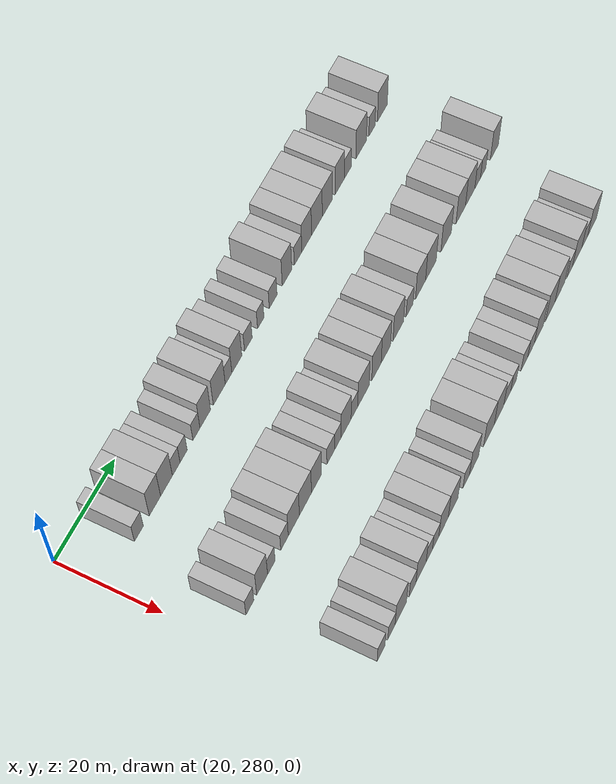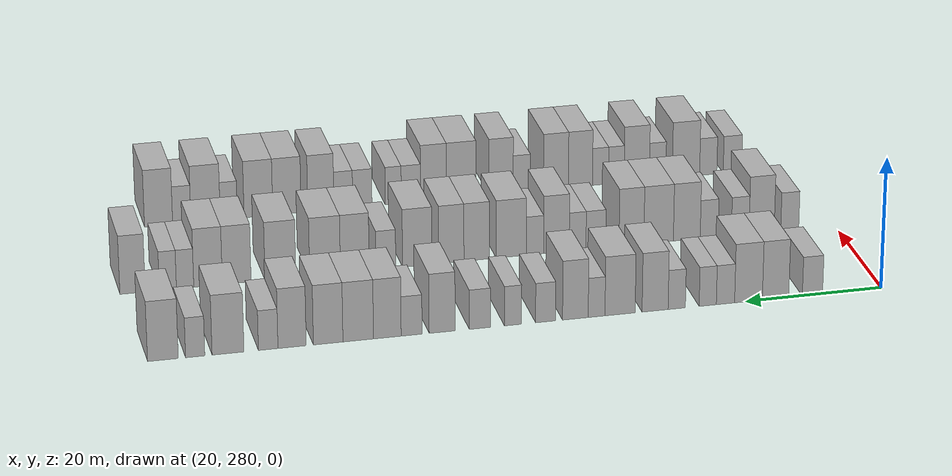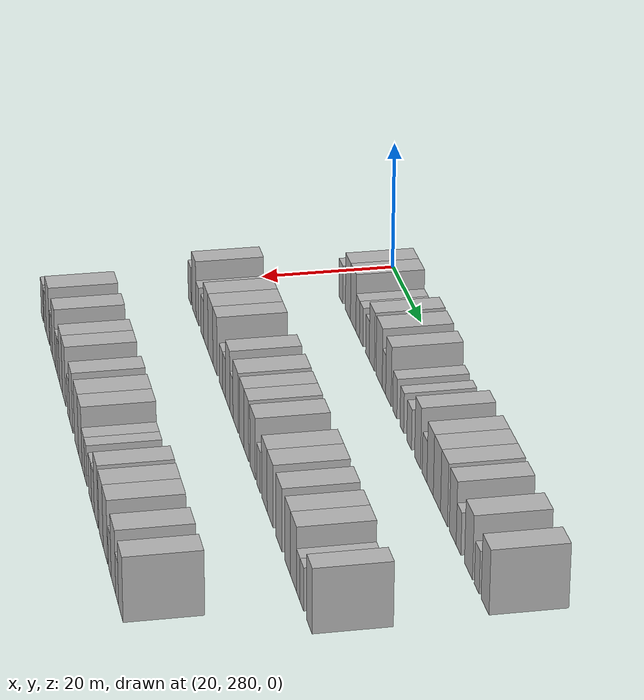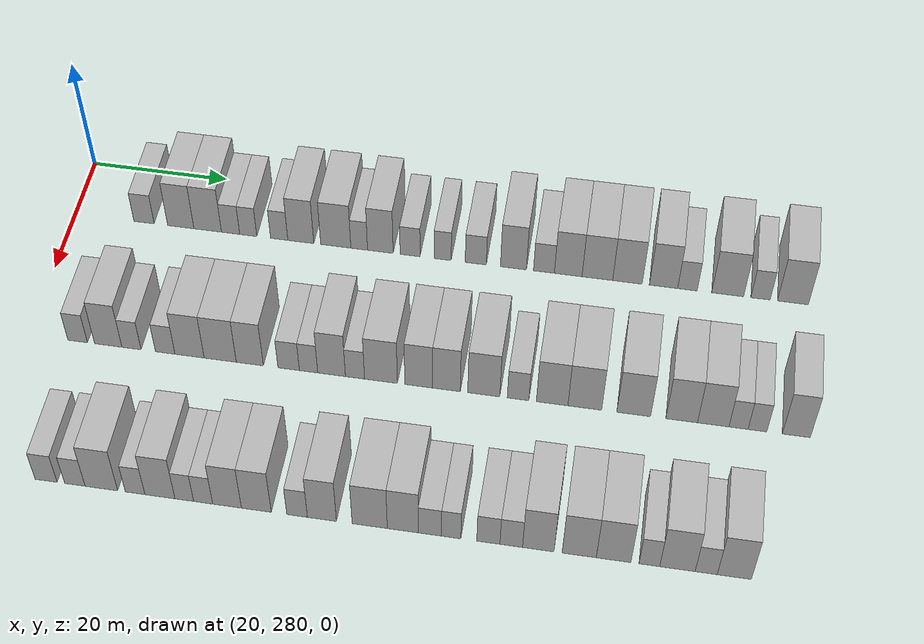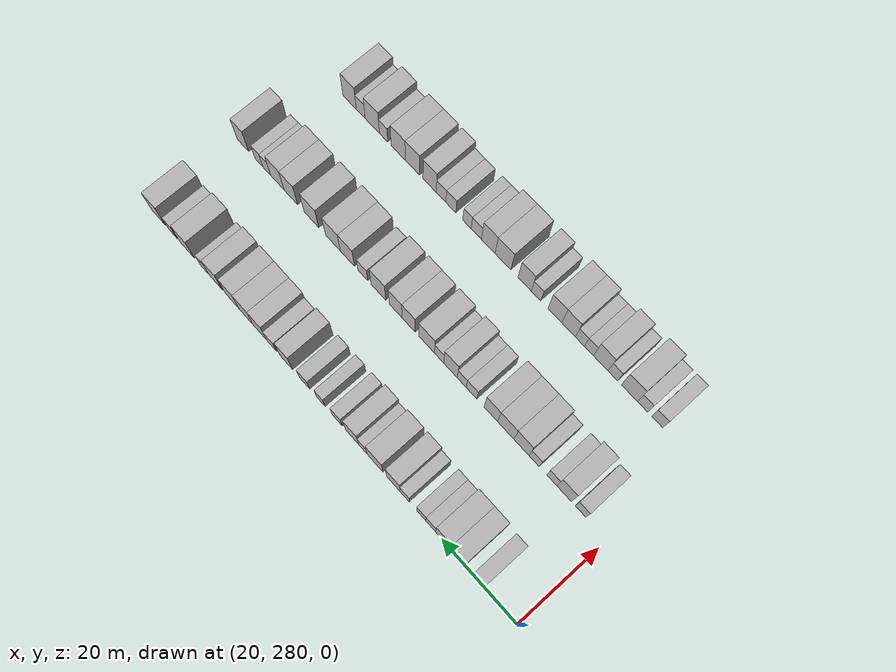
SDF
<sdf version="1.6">
 <world name="default">
  <model name="building_162">
   <static>1</static>
   <pose>25.0000 290.1784 0 0.000000 0.000000 0.000000</pose>
   <link name="link">
    <pose>0 0 3.00 0 0 0</pose>
    <collision name="collision"><geometry><box><size>10.0000 2.9744 6.0000</size></box></geometry></collision>
    <visual name="visual">
     <cast_shadows>0</cast_shadows>
     <geometry><box><size>10.0000 2.9744 6.0000</size></box></geometry>
     <material>
      <script>
       <uri>model://HANNAS_wall/materials/scripts</uri>
       <uri>model://HANNAS_wall/materials/textures</uri>
       <name>vrc/HANNAS_wall</name>
      </script>
     </material>
    </visual>
   </link>
  </model>
  <model name="building_163">
   <static>1</static>
   <pose>25.0000 295.5958 0 0.000000 0.000000 0.000000</pose>
   <link name="link">
    <pose>0 0 4.50 0 0 0</pose>
    <collision name="collision"><geometry><box><size>10.0000 3.8605 9.0000</size></box></geometry></collision>
    <visual name="visual">
     <cast_shadows>0</cast_shadows>
     <geometry><box><size>10.0000 3.8605 9.0000</size></box></geometry>
     <material>
      <script>
       <uri>model://HANNAS_wall/materials/scripts</uri>
       <uri>model://HANNAS_wall/materials/textures</uri>
       <name>vrc/HANNAS_wall</name>
      </script>
     </material>
    </visual>
   </link>
  </model>
  <model name="building_164">
   <static>1</static>
   <pose>25.0000 299.5522 0 0.000000 0.000000 0.000000</pose>
   <link name="link">
    <pose>0 0 4.50 0 0 0</pose>
    <collision name="collision"><geometry><box><size>10.0000 4.0522 9.0000</size></box></geometry></collision>
    <visual name="visual">
     <cast_shadows>0</cast_shadows>
     <geometry><box><size>10.0000 4.0522 9.0000</size></box></geometry>
     <material>
      <script>
       <uri>model://HANNAS_wall/materials/scripts</uri>
       <uri>model://HANNAS_wall/materials/textures</uri>
       <name>vrc/HANNAS_wall</name>
      </script>
     </material>
    </visual>
   </link>
  </model>
  <model name="building_165">
   <static>1</static>
   <pose>25.0000 302.9095 0 0.000000 0.000000 0.000000</pose>
   <link name="link">
    <pose>0 0 3.00 0 0 0</pose>
    <collision name="collision"><geometry><box><size>10.0000 2.6624 6.0000</size></box></geometry></collision>
    <visual name="visual">
     <cast_shadows>0</cast_shadows>
     <geometry><box><size>10.0000 2.6624 6.0000</size></box></geometry>
     <material>
      <script>
       <uri>model://HANNAS_wall/materials/scripts</uri>
       <uri>model://HANNAS_wall/materials/textures</uri>
       <name>vrc/HANNAS_wall</name>
      </script>
     </material>
    </visual>
   </link>
  </model>
  <model name="building_166">
   <static>1</static>
   <pose>25.0000 305.4868 0 0.000000 0.000000 0.000000</pose>
   <link name="link">
    <pose>0 0 3.00 0 0 0</pose>
    <collision name="collision"><geometry><box><size>10.0000 2.4922 6.0000</size></box></geometry></collision>
    <visual name="visual">
     <cast_shadows>0</cast_shadows>
     <geometry><box><size>10.0000 2.4922 6.0000</size></box></geometry>
     <material>
      <script>
       <uri>model://HANNAS_wall/materials/scripts</uri>
       <uri>model://HANNAS_wall/materials/textures</uri>
       <name>vrc/HANNAS_wall</name>
      </script>
     </material>
    </visual>
   </link>
  </model>
  <model name="building_167">
   <static>1</static>
   <pose>25.0000 309.9850 0 0.000000 0.000000 0.000000</pose>
   <link name="link">
    <pose>0 0 3.00 0 0 0</pose>
    <collision name="collision"><geometry><box><size>10.0000 2.5041 6.0000</size></box></geometry></collision>
    <visual name="visual">
     <cast_shadows>0</cast_shadows>
     <geometry><box><size>10.0000 2.5041 6.0000</size></box></geometry>
     <material>
      <script>
       <uri>model://HANNAS_wall/materials/scripts</uri>
       <uri>model://HANNAS_wall/materials/textures</uri>
       <name>vrc/HANNAS_wall</name>
      </script>
     </material>
    </visual>
   </link>
  </model>
  <model name="building_168">
   <static>1</static>
   <pose>25.0000 313.1184 0 0.000000 0.000000 0.000000</pose>
   <link name="link">
    <pose>0 0 4.50 0 0 0</pose>
    <collision name="collision"><geometry><box><size>10.0000 3.7628 9.0000</size></box></geometry></collision>
    <visual name="visual">
     <cast_shadows>0</cast_shadows>
     <geometry><box><size>10.0000 3.7628 9.0000</size></box></geometry>
     <material>
      <script>
       <uri>model://HANNAS_wall/materials/scripts</uri>
       <uri>model://HANNAS_wall/materials/textures</uri>
       <name>vrc/HANNAS_wall</name>
      </script>
     </material>
    </visual>
   </link>
  </model>
  <model name="building_169">
   <static>1</static>
   <pose>25.0000 318.1727 0 0.000000 0.000000 0.000000</pose>
   <link name="link">
    <pose>0 0 4.50 0 0 0</pose>
    <collision name="collision"><geometry><box><size>10.0000 4.3457 9.0000</size></box></geometry></collision>
    <visual name="visual">
     <cast_shadows>0</cast_shadows>
     <geometry><box><size>10.0000 4.3457 9.0000</size></box></geometry>
     <material>
      <script>
       <uri>model://HANNAS_wall/materials/scripts</uri>
       <uri>model://HANNAS_wall/materials/textures</uri>
       <name>vrc/HANNAS_wall</name>
      </script>
     </material>
    </visual>
   </link>
  </model>
  <model name="building_170">
   <static>1</static>
   <pose>25.0000 321.5497 0 0.000000 0.000000 0.000000</pose>
   <link name="link">
    <pose>0 0 3.00 0 0 0</pose>
    <collision name="collision"><geometry><box><size>10.0000 2.4084 6.0000</size></box></geometry></collision>
    <visual name="visual">
     <cast_shadows>0</cast_shadows>
     <geometry><box><size>10.0000 2.4084 6.0000</size></box></geometry>
     <material>
      <script>
       <uri>model://HANNAS_wall/materials/scripts</uri>
       <uri>model://HANNAS_wall/materials/textures</uri>
       <name>vrc/HANNAS_wall</name>
      </script>
     </material>
    </visual>
   </link>
  </model>
  <model name="building_171">
   <static>1</static>
   <pose>25.0000 324.5931 0 0.000000 0.000000 0.000000</pose>
   <link name="link">
    <pose>0 0 4.50 0 0 0</pose>
    <collision name="collision"><geometry><box><size>10.0000 3.6786 9.0000</size></box></geometry></collision>
    <visual name="visual">
     <cast_shadows>0</cast_shadows>
     <geometry><box><size>10.0000 3.6786 9.0000</size></box></geometry>
     <material>
      <script>
       <uri>model://HANNAS_wall/materials/scripts</uri>
       <uri>model://HANNAS_wall/materials/textures</uri>
       <name>vrc/HANNAS_wall</name>
      </script>
     </material>
    </visual>
   </link>
  </model>
  <model name="building_172">
   <static>1</static>
   <pose>25.0000 328.8581 0 0.000000 0.000000 0.000000</pose>
   <link name="link">
    <pose>0 0 3.00 0 0 0</pose>
    <collision name="collision"><geometry><box><size>10.0000 2.8513 6.0000</size></box></geometry></collision>
    <visual name="visual">
     <cast_shadows>0</cast_shadows>
     <geometry><box><size>10.0000 2.8513 6.0000</size></box></geometry>
     <material>
      <script>
       <uri>model://HANNAS_wall/materials/scripts</uri>
       <uri>model://HANNAS_wall/materials/textures</uri>
       <name>vrc/HANNAS_wall</name>
      </script>
     </material>
    </visual>
   </link>
  </model>
  <model name="building_173">
   <static>1</static>
   <pose>25.0000 333.5034 0 0.000000 0.000000 0.000000</pose>
   <link name="link">
    <pose>0 0 3.00 0 0 0</pose>
    <collision name="collision"><geometry><box><size>10.0000 2.4392 6.0000</size></box></geometry></collision>
    <visual name="visual">
     <cast_shadows>0</cast_shadows>
     <geometry><box><size>10.0000 2.4392 6.0000</size></box></geometry>
     <material>
      <script>
       <uri>model://HANNAS_wall/materials/scripts</uri>
       <uri>model://HANNAS_wall/materials/textures</uri>
       <name>vrc/HANNAS_wall</name>
      </script>
     </material>
    </visual>
   </link>
  </model>
  <model name="building_174">
   <static>1</static>
   <pose>25.0000 338.2202 0 0.000000 0.000000 0.000000</pose>
   <link name="link">
    <pose>0 0 3.00 0 0 0</pose>
    <collision name="collision"><geometry><box><size>10.0000 2.9945 6.0000</size></box></geometry></collision>
    <visual name="visual">
     <cast_shadows>0</cast_shadows>
     <geometry><box><size>10.0000 2.9945 6.0000</size></box></geometry>
     <material>
      <script>
       <uri>model://HANNAS_wall/materials/scripts</uri>
       <uri>model://HANNAS_wall/materials/textures</uri>
       <name>vrc/HANNAS_wall</name>
      </script>
     </material>
    </visual>
   </link>
  </model>
  <model name="building_175">
   <static>1</static>
   <pose>25.0000 343.5546 0 0.000000 0.000000 0.000000</pose>
   <link name="link">
    <pose>0 0 4.50 0 0 0</pose>
    <collision name="collision"><geometry><box><size>10.0000 3.6743 9.0000</size></box></geometry></collision>
    <visual name="visual">
     <cast_shadows>0</cast_shadows>
     <geometry><box><size>10.0000 3.6743 9.0000</size></box></geometry>
     <material>
      <script>
       <uri>model://HANNAS_wall/materials/scripts</uri>
       <uri>model://HANNAS_wall/materials/textures</uri>
       <name>vrc/HANNAS_wall</name>
      </script>
     </material>
    </visual>
   </link>
  </model>
  <model name="building_176">
   <static>1</static>
   <pose>25.0000 347.8638 0 0.000000 0.000000 0.000000</pose>
   <link name="link">
    <pose>0 0 3.00 0 0 0</pose>
    <collision name="collision"><geometry><box><size>10.0000 2.9440 6.0000</size></box></geometry></collision>
    <visual name="visual">
     <cast_shadows>0</cast_shadows>
     <geometry><box><size>10.0000 2.9440 6.0000</size></box></geometry>
     <material>
      <script>
       <uri>model://HANNAS_wall/materials/scripts</uri>
       <uri>model://HANNAS_wall/materials/textures</uri>
       <name>vrc/HANNAS_wall</name>
      </script>
     </material>
    </visual>
   </link>
  </model>
  <model name="building_177">
   <static>1</static>
   <pose>25.0000 351.2770 0 0.000000 0.000000 0.000000</pose>
   <link name="link">
    <pose>0 0 4.50 0 0 0</pose>
    <collision name="collision"><geometry><box><size>10.0000 3.8825 9.0000</size></box></geometry></collision>
    <visual name="visual">
     <cast_shadows>0</cast_shadows>
     <geometry><box><size>10.0000 3.8825 9.0000</size></box></geometry>
     <material>
      <script>
       <uri>model://HANNAS_wall/materials/scripts</uri>
       <uri>model://HANNAS_wall/materials/textures</uri>
       <name>vrc/HANNAS_wall</name>
      </script>
     </material>
    </visual>
   </link>
  </model>
  <model name="building_178">
   <static>1</static>
   <pose>25.0000 355.3597 0 0.000000 0.000000 0.000000</pose>
   <link name="link">
    <pose>0 0 4.50 0 0 0</pose>
    <collision name="collision"><geometry><box><size>10.0000 4.2828 9.0000</size></box></geometry></collision>
    <visual name="visual">
     <cast_shadows>0</cast_shadows>
     <geometry><box><size>10.0000 4.2828 9.0000</size></box></geometry>
     <material>
      <script>
       <uri>model://HANNAS_wall/materials/scripts</uri>
       <uri>model://HANNAS_wall/materials/textures</uri>
       <name>vrc/HANNAS_wall</name>
      </script>
     </material>
    </visual>
   </link>
  </model>
  <model name="building_179">
   <static>1</static>
   <pose>25.0000 359.5636 0 0.000000 0.000000 0.000000</pose>
   <link name="link">
    <pose>0 0 4.50 0 0 0</pose>
    <collision name="collision"><geometry><box><size>10.0000 4.1251 9.0000</size></box></geometry></collision>
    <visual name="visual">
     <cast_shadows>0</cast_shadows>
     <geometry><box><size>10.0000 4.1251 9.0000</size></box></geometry>
     <material>
      <script>
       <uri>model://HANNAS_wall/materials/scripts</uri>
       <uri>model://HANNAS_wall/materials/textures</uri>
       <name>vrc/HANNAS_wall</name>
      </script>
     </material>
    </visual>
   </link>
  </model>
  <model name="building_180">
   <static>1</static>
   <pose>25.0000 364.5917 0 0.000000 0.000000 0.000000</pose>
   <link name="link">
    <pose>0 0 4.50 0 0 0</pose>
    <collision name="collision"><geometry><box><size>10.0000 3.9309 9.0000</size></box></geometry></collision>
    <visual name="visual">
     <cast_shadows>0</cast_shadows>
     <geometry><box><size>10.0000 3.9309 9.0000</size></box></geometry>
     <material>
      <script>
       <uri>model://HANNAS_wall/materials/scripts</uri>
       <uri>model://HANNAS_wall/materials/textures</uri>
       <name>vrc/HANNAS_wall</name>
      </script>
     </material>
    </visual>
   </link>
  </model>
  <model name="building_181">
   <static>1</static>
   <pose>25.0000 367.9125 0 0.000000 0.000000 0.000000</pose>
   <link name="link">
    <pose>0 0 3.00 0 0 0</pose>
    <collision name="collision"><geometry><box><size>10.0000 2.7106 6.0000</size></box></geometry></collision>
    <visual name="visual">
     <cast_shadows>0</cast_shadows>
     <geometry><box><size>10.0000 2.7106 6.0000</size></box></geometry>
     <material>
      <script>
       <uri>model://HANNAS_wall/materials/scripts</uri>
       <uri>model://HANNAS_wall/materials/textures</uri>
       <name>vrc/HANNAS_wall</name>
      </script>
     </material>
    </visual>
   </link>
  </model>
  <model name="building_182">
   <static>1</static>
   <pose>25.0000 373.4718 0 0.000000 0.000000 0.000000</pose>
   <link name="link">
    <pose>0 0 4.50 0 0 0</pose>
    <collision name="collision"><geometry><box><size>10.0000 4.4081 9.0000</size></box></geometry></collision>
    <visual name="visual">
     <cast_shadows>0</cast_shadows>
     <geometry><box><size>10.0000 4.4081 9.0000</size></box></geometry>
     <material>
      <script>
       <uri>model://HANNAS_wall/materials/scripts</uri>
       <uri>model://HANNAS_wall/materials/textures</uri>
       <name>vrc/HANNAS_wall</name>
      </script>
     </material>
    </visual>
   </link>
  </model>
  <model name="building_183">
   <static>1</static>
   <pose>25.0000 378.0009 0 0.000000 0.000000 0.000000</pose>
   <link name="link">
    <pose>0 0 3.00 0 0 0</pose>
    <collision name="collision"><geometry><box><size>10.0000 2.6501 6.0000</size></box></geometry></collision>
    <visual name="visual">
     <cast_shadows>0</cast_shadows>
     <geometry><box><size>10.0000 2.6501 6.0000</size></box></geometry>
     <material>
      <script>
       <uri>model://HANNAS_wall/materials/scripts</uri>
       <uri>model://HANNAS_wall/materials/textures</uri>
       <name>vrc/HANNAS_wall</name>
      </script>
     </material>
    </visual>
   </link>
  </model>
  <model name="building_184">
   <static>1</static>
   <pose>25.0000 382.4379 0 0.000000 0.000000 0.000000</pose>
   <link name="link">
    <pose>0 0 4.50 0 0 0</pose>
    <collision name="collision"><geometry><box><size>10.0000 4.2238 9.0000</size></box></geometry></collision>
    <visual name="visual">
     <cast_shadows>0</cast_shadows>
     <geometry><box><size>10.0000 4.2238 9.0000</size></box></geometry>
     <material>
      <script>
       <uri>model://HANNAS_wall/materials/scripts</uri>
       <uri>model://HANNAS_wall/materials/textures</uri>
       <name>vrc/HANNAS_wall</name>
      </script>
     </material>
    </visual>
   </link>
  </model>
  <model name="building_349">
   <static>1</static>
   <pose>47.0000 286.8648 0 0.000000 0.000000 0.000000</pose>
   <link name="link">
    <pose>0 0 3.00 0 0 0</pose>
    <collision name="collision"><geometry><box><size>10.0000 2.7368 6.0000</size></box></geometry></collision>
    <visual name="visual">
     <cast_shadows>0</cast_shadows>
     <geometry><box><size>10.0000 2.7368 6.0000</size></box></geometry>
     <material>
      <script>
       <uri>model://HANNAS_wall/materials/scripts</uri>
       <uri>model://HANNAS_wall/materials/textures</uri>
       <name>vrc/HANNAS_wall</name>
      </script>
     </material>
    </visual>
   </link>
  </model>
  <model name="building_350">
   <static>1</static>
   <pose>47.0000 291.1419 0 0.000000 0.000000 0.000000</pose>
   <link name="link">
    <pose>0 0 4.50 0 0 0</pose>
    <collision name="collision"><geometry><box><size>10.0000 3.8173 9.0000</size></box></geometry></collision>
    <visual name="visual">
     <cast_shadows>0</cast_shadows>
     <geometry><box><size>10.0000 3.8173 9.0000</size></box></geometry>
     <material>
      <script>
       <uri>model://HANNAS_wall/materials/scripts</uri>
       <uri>model://HANNAS_wall/materials/textures</uri>
       <name>vrc/HANNAS_wall</name>
      </script>
     </material>
    </visual>
   </link>
  </model>
  <model name="building_351">
   <static>1</static>
   <pose>47.0000 294.3826 0 0.000000 0.000000 0.000000</pose>
   <link name="link">
    <pose>0 0 3.00 0 0 0</pose>
    <collision name="collision"><geometry><box><size>10.0000 2.6640 6.0000</size></box></geometry></collision>
    <visual name="visual">
     <cast_shadows>0</cast_shadows>
     <geometry><box><size>10.0000 2.6640 6.0000</size></box></geometry>
     <material>
      <script>
       <uri>model://HANNAS_wall/materials/scripts</uri>
       <uri>model://HANNAS_wall/materials/textures</uri>
       <name>vrc/HANNAS_wall</name>
      </script>
     </material>
    </visual>
   </link>
  </model>
  <model name="building_352">
   <static>1</static>
   <pose>47.0000 299.0689 0 0.000000 0.000000 0.000000</pose>
   <link name="link">
    <pose>0 0 3.00 0 0 0</pose>
    <collision name="collision"><geometry><box><size>10.0000 2.7086 6.0000</size></box></geometry></collision>
    <visual name="visual">
     <cast_shadows>0</cast_shadows>
     <geometry><box><size>10.0000 2.7086 6.0000</size></box></geometry>
     <material>
      <script>
       <uri>model://HANNAS_wall/materials/scripts</uri>
       <uri>model://HANNAS_wall/materials/textures</uri>
       <name>vrc/HANNAS_wall</name>
      </script>
     </material>
    </visual>
   </link>
  </model>
  <model name="building_353">
   <static>1</static>
   <pose>47.0000 302.4436 0 0.000000 0.000000 0.000000</pose>
   <link name="link">
    <pose>0 0 4.50 0 0 0</pose>
    <collision name="collision"><geometry><box><size>10.0000 4.0410 9.0000</size></box></geometry></collision>
    <visual name="visual">
     <cast_shadows>0</cast_shadows>
     <geometry><box><size>10.0000 4.0410 9.0000</size></box></geometry>
     <material>
      <script>
       <uri>model://HANNAS_wall/materials/scripts</uri>
       <uri>model://HANNAS_wall/materials/textures</uri>
       <name>vrc/HANNAS_wall</name>
      </script>
     </material>
    </visual>
   </link>
  </model>
  <model name="building_354">
   <static>1</static>
   <pose>47.0000 306.6775 0 0.000000 0.000000 0.000000</pose>
   <link name="link">
    <pose>0 0 4.50 0 0 0</pose>
    <collision name="collision"><geometry><box><size>10.0000 4.4268 9.0000</size></box></geometry></collision>
    <visual name="visual">
     <cast_shadows>0</cast_shadows>
     <geometry><box><size>10.0000 4.4268 9.0000</size></box></geometry>
     <material>
      <script>
       <uri>model://HANNAS_wall/materials/scripts</uri>
       <uri>model://HANNAS_wall/materials/textures</uri>
       <name>vrc/HANNAS_wall</name>
      </script>
     </material>
    </visual>
   </link>
  </model>
  <model name="building_355">
   <static>1</static>
   <pose>47.0000 310.7511 0 0.000000 0.000000 0.000000</pose>
   <link name="link">
    <pose>0 0 4.50 0 0 0</pose>
    <collision name="collision"><geometry><box><size>10.0000 3.7204 9.0000</size></box></geometry></collision>
    <visual name="visual">
     <cast_shadows>0</cast_shadows>
     <geometry><box><size>10.0000 3.7204 9.0000</size></box></geometry>
     <material>
      <script>
       <uri>model://HANNAS_wall/materials/scripts</uri>
       <uri>model://HANNAS_wall/materials/textures</uri>
       <name>vrc/HANNAS_wall</name>
      </script>
     </material>
    </visual>
   </link>
  </model>
  <model name="building_356">
   <static>1</static>
   <pose>47.0000 316.0741 0 0.000000 0.000000 0.000000</pose>
   <link name="link">
    <pose>0 0 3.00 0 0 0</pose>
    <collision name="collision"><geometry><box><size>10.0000 2.9257 6.0000</size></box></geometry></collision>
    <visual name="visual">
     <cast_shadows>0</cast_shadows>
     <geometry><box><size>10.0000 2.9257 6.0000</size></box></geometry>
     <material>
      <script>
       <uri>model://HANNAS_wall/materials/scripts</uri>
       <uri>model://HANNAS_wall/materials/textures</uri>
       <name>vrc/HANNAS_wall</name>
      </script>
     </material>
    </visual>
   </link>
  </model>
  <model name="building_357">
   <static>1</static>
   <pose>47.0000 318.7859 0 0.000000 0.000000 0.000000</pose>
   <link name="link">
    <pose>0 0 3.00 0 0 0</pose>
    <collision name="collision"><geometry><box><size>10.0000 2.4979 6.0000</size></box></geometry></collision>
    <visual name="visual">
     <cast_shadows>0</cast_shadows>
     <geometry><box><size>10.0000 2.4979 6.0000</size></box></geometry>
     <material>
      <script>
       <uri>model://HANNAS_wall/materials/scripts</uri>
       <uri>model://HANNAS_wall/materials/textures</uri>
       <name>vrc/HANNAS_wall</name>
      </script>
     </material>
    </visual>
   </link>
  </model>
  <model name="building_358">
   <static>1</static>
   <pose>47.0000 321.9227 0 0.000000 0.000000 0.000000</pose>
   <link name="link">
    <pose>0 0 4.50 0 0 0</pose>
    <collision name="collision"><geometry><box><size>10.0000 3.7758 9.0000</size></box></geometry></collision>
    <visual name="visual">
     <cast_shadows>0</cast_shadows>
     <geometry><box><size>10.0000 3.7758 9.0000</size></box></geometry>
     <material>
      <script>
       <uri>model://HANNAS_wall/materials/scripts</uri>
       <uri>model://HANNAS_wall/materials/textures</uri>
       <name>vrc/HANNAS_wall</name>
      </script>
     </material>
    </visual>
   </link>
  </model>
  <model name="building_359">
   <static>1</static>
   <pose>47.0000 325.1067 0 0.000000 0.000000 0.000000</pose>
   <link name="link">
    <pose>0 0 3.00 0 0 0</pose>
    <collision name="collision"><geometry><box><size>10.0000 2.5921 6.0000</size></box></geometry></collision>
    <visual name="visual">
     <cast_shadows>0</cast_shadows>
     <geometry><box><size>10.0000 2.5921 6.0000</size></box></geometry>
     <material>
      <script>
       <uri>model://HANNAS_wall/materials/scripts</uri>
       <uri>model://HANNAS_wall/materials/textures</uri>
       <name>vrc/HANNAS_wall</name>
      </script>
     </material>
    </visual>
   </link>
  </model>
  <model name="building_360">
   <static>1</static>
   <pose>47.0000 328.6252 0 0.000000 0.000000 0.000000</pose>
   <link name="link">
    <pose>0 0 4.50 0 0 0</pose>
    <collision name="collision"><geometry><box><size>10.0000 4.4449 9.0000</size></box></geometry></collision>
    <visual name="visual">
     <cast_shadows>0</cast_shadows>
     <geometry><box><size>10.0000 4.4449 9.0000</size></box></geometry>
     <material>
      <script>
       <uri>model://HANNAS_wall/materials/scripts</uri>
       <uri>model://HANNAS_wall/materials/textures</uri>
       <name>vrc/HANNAS_wall</name>
      </script>
     </material>
    </visual>
   </link>
  </model>
  <model name="building_361">
   <static>1</static>
   <pose>47.0000 333.7188 0 0.000000 0.000000 0.000000</pose>
   <link name="link">
    <pose>0 0 4.50 0 0 0</pose>
    <collision name="collision"><geometry><box><size>10.0000 3.7422 9.0000</size></box></geometry></collision>
    <visual name="visual">
     <cast_shadows>0</cast_shadows>
     <geometry><box><size>10.0000 3.7422 9.0000</size></box></geometry>
     <material>
      <script>
       <uri>model://HANNAS_wall/materials/scripts</uri>
       <uri>model://HANNAS_wall/materials/textures</uri>
       <name>vrc/HANNAS_wall</name>
      </script>
     </material>
    </visual>
   </link>
  </model>
  <model name="building_362">
   <static>1</static>
   <pose>47.0000 337.4452 0 0.000000 0.000000 0.000000</pose>
   <link name="link">
    <pose>0 0 4.50 0 0 0</pose>
    <collision name="collision"><geometry><box><size>10.0000 3.7107 9.0000</size></box></geometry></collision>
    <visual name="visual">
     <cast_shadows>0</cast_shadows>
     <geometry><box><size>10.0000 3.7107 9.0000</size></box></geometry>
     <material>
      <script>
       <uri>model://HANNAS_wall/materials/scripts</uri>
       <uri>model://HANNAS_wall/materials/textures</uri>
       <name>vrc/HANNAS_wall</name>
      </script>
     </material>
    </visual>
   </link>
  </model>
  <model name="building_363">
   <static>1</static>
   <pose>47.0000 342.4415 0 0.000000 0.000000 0.000000</pose>
   <link name="link">
    <pose>0 0 4.50 0 0 0</pose>
    <collision name="collision"><geometry><box><size>10.0000 4.2819 9.0000</size></box></geometry></collision>
    <visual name="visual">
     <cast_shadows>0</cast_shadows>
     <geometry><box><size>10.0000 4.2819 9.0000</size></box></geometry>
     <material>
      <script>
       <uri>model://HANNAS_wall/materials/scripts</uri>
       <uri>model://HANNAS_wall/materials/textures</uri>
       <name>vrc/HANNAS_wall</name>
      </script>
     </material>
    </visual>
   </link>
  </model>
  <model name="building_364">
   <static>1</static>
   <pose>47.0000 347.0173 0 0.000000 0.000000 0.000000</pose>
   <link name="link">
    <pose>0 0 3.00 0 0 0</pose>
    <collision name="collision"><geometry><box><size>10.0000 2.8697 6.0000</size></box></geometry></collision>
    <visual name="visual">
     <cast_shadows>0</cast_shadows>
     <geometry><box><size>10.0000 2.8697 6.0000</size></box></geometry>
     <material>
      <script>
       <uri>model://HANNAS_wall/materials/scripts</uri>
       <uri>model://HANNAS_wall/materials/textures</uri>
       <name>vrc/HANNAS_wall</name>
      </script>
     </material>
    </visual>
   </link>
  </model>
  <model name="building_365">
   <static>1</static>
   <pose>47.0000 351.5429 0 0.000000 0.000000 0.000000</pose>
   <link name="link">
    <pose>0 0 4.50 0 0 0</pose>
    <collision name="collision"><geometry><box><size>10.0000 4.1815 9.0000</size></box></geometry></collision>
    <visual name="visual">
     <cast_shadows>0</cast_shadows>
     <geometry><box><size>10.0000 4.1815 9.0000</size></box></geometry>
     <material>
      <script>
       <uri>model://HANNAS_wall/materials/scripts</uri>
       <uri>model://HANNAS_wall/materials/textures</uri>
       <name>vrc/HANNAS_wall</name>
      </script>
     </material>
    </visual>
   </link>
  </model>
  <model name="building_366">
   <static>1</static>
   <pose>47.0000 355.8601 0 0.000000 0.000000 0.000000</pose>
   <link name="link">
    <pose>0 0 4.50 0 0 0</pose>
    <collision name="collision"><geometry><box><size>10.0000 4.4528 9.0000</size></box></geometry></collision>
    <visual name="visual">
     <cast_shadows>0</cast_shadows>
     <geometry><box><size>10.0000 4.4528 9.0000</size></box></geometry>
     <material>
      <script>
       <uri>model://HANNAS_wall/materials/scripts</uri>
       <uri>model://HANNAS_wall/materials/textures</uri>
       <name>vrc/HANNAS_wall</name>
      </script>
     </material>
    </visual>
   </link>
  </model>
  <model name="building_367">
   <static>1</static>
   <pose>47.0000 362.3075 0 0.000000 0.000000 0.000000</pose>
   <link name="link">
    <pose>0 0 4.50 0 0 0</pose>
    <collision name="collision"><geometry><box><size>10.0000 4.4420 9.0000</size></box></geometry></collision>
    <visual name="visual">
     <cast_shadows>0</cast_shadows>
     <geometry><box><size>10.0000 4.4420 9.0000</size></box></geometry>
     <material>
      <script>
       <uri>model://HANNAS_wall/materials/scripts</uri>
       <uri>model://HANNAS_wall/materials/textures</uri>
       <name>vrc/HANNAS_wall</name>
      </script>
     </material>
    </visual>
   </link>
  </model>
  <model name="building_368">
   <static>1</static>
   <pose>47.0000 368.5923 0 0.000000 0.000000 0.000000</pose>
   <link name="link">
    <pose>0 0 4.50 0 0 0</pose>
    <collision name="collision"><geometry><box><size>10.0000 4.1275 9.0000</size></box></geometry></collision>
    <visual name="visual">
     <cast_shadows>0</cast_shadows>
     <geometry><box><size>10.0000 4.1275 9.0000</size></box></geometry>
     <material>
      <script>
       <uri>model://HANNAS_wall/materials/scripts</uri>
       <uri>model://HANNAS_wall/materials/textures</uri>
       <name>vrc/HANNAS_wall</name>
      </script>
     </material>
    </visual>
   </link>
  </model>
  <model name="building_369">
   <static>1</static>
   <pose>47.0000 372.7007 0 0.000000 0.000000 0.000000</pose>
   <link name="link">
    <pose>0 0 4.50 0 0 0</pose>
    <collision name="collision"><geometry><box><size>10.0000 4.0894 9.0000</size></box></geometry></collision>
    <visual name="visual">
     <cast_shadows>0</cast_shadows>
     <geometry><box><size>10.0000 4.0894 9.0000</size></box></geometry>
     <material>
      <script>
       <uri>model://HANNAS_wall/materials/scripts</uri>
       <uri>model://HANNAS_wall/materials/textures</uri>
       <name>vrc/HANNAS_wall</name>
      </script>
     </material>
    </visual>
   </link>
  </model>
  <model name="building_370">
   <static>1</static>
   <pose>47.0000 375.9845 0 0.000000 0.000000 0.000000</pose>
   <link name="link">
    <pose>0 0 3.00 0 0 0</pose>
    <collision name="collision"><geometry><box><size>10.0000 2.4782 6.0000</size></box></geometry></collision>
    <visual name="visual">
     <cast_shadows>0</cast_shadows>
     <geometry><box><size>10.0000 2.4782 6.0000</size></box></geometry>
     <material>
      <script>
       <uri>model://HANNAS_wall/materials/scripts</uri>
       <uri>model://HANNAS_wall/materials/textures</uri>
       <name>vrc/HANNAS_wall</name>
      </script>
     </material>
    </visual>
   </link>
  </model>
  <model name="building_371">
   <static>1</static>
   <pose>47.0000 378.4394 0 0.000000 0.000000 0.000000</pose>
   <link name="link">
    <pose>0 0 3.00 0 0 0</pose>
    <collision name="collision"><geometry><box><size>10.0000 2.4318 6.0000</size></box></geometry></collision>
    <visual name="visual">
     <cast_shadows>0</cast_shadows>
     <geometry><box><size>10.0000 2.4318 6.0000</size></box></geometry>
     <material>
      <script>
       <uri>model://HANNAS_wall/materials/scripts</uri>
       <uri>model://HANNAS_wall/materials/textures</uri>
       <name>vrc/HANNAS_wall</name>
      </script>
     </material>
    </visual>
   </link>
  </model>
  <model name="building_372">
   <static>1</static>
   <pose>47.0000 383.4575 0 0.000000 0.000000 0.000000</pose>
   <link name="link">
    <pose>0 0 4.50 0 0 0</pose>
    <collision name="collision"><geometry><box><size>10.0000 3.6043 9.0000</size></box></geometry></collision>
    <visual name="visual">
     <cast_shadows>0</cast_shadows>
     <geometry><box><size>10.0000 3.6043 9.0000</size></box></geometry>
     <material>
      <script>
       <uri>model://HANNAS_wall/materials/scripts</uri>
       <uri>model://HANNAS_wall/materials/textures</uri>
       <name>vrc/HANNAS_wall</name>
      </script>
     </material>
    </visual>
   </link>
  </model>
  <model name="building_541">
   <static>1</static>
   <pose>69.0000 289.2172 0 0.000000 0.000000 0.000000</pose>
   <link name="link">
    <pose>0 0 3.00 0 0 0</pose>
    <collision name="collision"><geometry><box><size>10.0000 2.8967 6.0000</size></box></geometry></collision>
    <visual name="visual">
     <cast_shadows>0</cast_shadows>
     <geometry><box><size>10.0000 2.8967 6.0000</size></box></geometry>
     <material>
      <script>
       <uri>model://HANNAS_wall/materials/scripts</uri>
       <uri>model://HANNAS_wall/materials/textures</uri>
       <name>vrc/HANNAS_wall</name>
      </script>
     </material>
    </visual>
   </link>
  </model>
  <model name="building_542">
   <static>1</static>
   <pose>69.0000 293.0130 0 0.000000 0.000000 0.000000</pose>
   <link name="link">
    <pose>0 0 3.00 0 0 0</pose>
    <collision name="collision"><geometry><box><size>10.0000 2.6949 6.0000</size></box></geometry></collision>
    <visual name="visual">
     <cast_shadows>0</cast_shadows>
     <geometry><box><size>10.0000 2.6949 6.0000</size></box></geometry>
     <material>
      <script>
       <uri>model://HANNAS_wall/materials/scripts</uri>
       <uri>model://HANNAS_wall/materials/textures</uri>
       <name>vrc/HANNAS_wall</name>
      </script>
     </material>
    </visual>
   </link>
  </model>
  <model name="building_543">
   <static>1</static>
   <pose>69.0000 296.4953 0 0.000000 0.000000 0.000000</pose>
   <link name="link">
    <pose>0 0 4.50 0 0 0</pose>
    <collision name="collision"><geometry><box><size>10.0000 4.2697 9.0000</size></box></geometry></collision>
    <visual name="visual">
     <cast_shadows>0</cast_shadows>
     <geometry><box><size>10.0000 4.2697 9.0000</size></box></geometry>
     <material>
      <script>
       <uri>model://HANNAS_wall/materials/scripts</uri>
       <uri>model://HANNAS_wall/materials/textures</uri>
       <name>vrc/HANNAS_wall</name>
      </script>
     </material>
    </visual>
   </link>
  </model>
  <model name="building_544">
   <static>1</static>
   <pose>69.0000 300.9106 0 0.000000 0.000000 0.000000</pose>
   <link name="link">
    <pose>0 0 3.00 0 0 0</pose>
    <collision name="collision"><geometry><box><size>10.0000 2.5609 6.0000</size></box></geometry></collision>
    <visual name="visual">
     <cast_shadows>0</cast_shadows>
     <geometry><box><size>10.0000 2.5609 6.0000</size></box></geometry>
     <material>
      <script>
       <uri>model://HANNAS_wall/materials/scripts</uri>
       <uri>model://HANNAS_wall/materials/textures</uri>
       <name>vrc/HANNAS_wall</name>
      </script>
     </material>
    </visual>
   </link>
  </model>
  <model name="building_545">
   <static>1</static>
   <pose>69.0000 304.1479 0 0.000000 0.000000 0.000000</pose>
   <link name="link">
    <pose>0 0 4.50 0 0 0</pose>
    <collision name="collision"><geometry><box><size>10.0000 3.9137 9.0000</size></box></geometry></collision>
    <visual name="visual">
     <cast_shadows>0</cast_shadows>
     <geometry><box><size>10.0000 3.9137 9.0000</size></box></geometry>
     <material>
      <script>
       <uri>model://HANNAS_wall/materials/scripts</uri>
       <uri>model://HANNAS_wall/materials/textures</uri>
       <name>vrc/HANNAS_wall</name>
      </script>
     </material>
    </visual>
   </link>
  </model>
  <model name="building_546">
   <static>1</static>
   <pose>69.0000 307.3171 0 0.000000 0.000000 0.000000</pose>
   <link name="link">
    <pose>0 0 3.00 0 0 0</pose>
    <collision name="collision"><geometry><box><size>10.0000 2.4247 6.0000</size></box></geometry></collision>
    <visual name="visual">
     <cast_shadows>0</cast_shadows>
     <geometry><box><size>10.0000 2.4247 6.0000</size></box></geometry>
     <material>
      <script>
       <uri>model://HANNAS_wall/materials/scripts</uri>
       <uri>model://HANNAS_wall/materials/textures</uri>
       <name>vrc/HANNAS_wall</name>
      </script>
     </material>
    </visual>
   </link>
  </model>
  <model name="building_547">
   <static>1</static>
   <pose>69.0000 309.7642 0 0.000000 0.000000 0.000000</pose>
   <link name="link">
    <pose>0 0 3.00 0 0 0</pose>
    <collision name="collision"><geometry><box><size>10.0000 2.4696 6.0000</size></box></geometry></collision>
    <visual name="visual">
     <cast_shadows>0</cast_shadows>
     <geometry><box><size>10.0000 2.4696 6.0000</size></box></geometry>
     <material>
      <script>
       <uri>model://HANNAS_wall/materials/scripts</uri>
       <uri>model://HANNAS_wall/materials/textures</uri>
       <name>vrc/HANNAS_wall</name>
      </script>
     </material>
    </visual>
   </link>
  </model>
  <model name="building_548">
   <static>1</static>
   <pose>69.0000 312.8559 0 0.000000 0.000000 0.000000</pose>
   <link name="link">
    <pose>0 0 4.50 0 0 0</pose>
    <collision name="collision"><geometry><box><size>10.0000 3.7137 9.0000</size></box></geometry></collision>
    <visual name="visual">
     <cast_shadows>0</cast_shadows>
     <geometry><box><size>10.0000 3.7137 9.0000</size></box></geometry>
     <material>
      <script>
       <uri>model://HANNAS_wall/materials/scripts</uri>
       <uri>model://HANNAS_wall/materials/textures</uri>
       <name>vrc/HANNAS_wall</name>
      </script>
     </material>
    </visual>
   </link>
  </model>
  <model name="building_549">
   <static>1</static>
   <pose>69.0000 316.6318 0 0.000000 0.000000 0.000000</pose>
   <link name="link">
    <pose>0 0 4.50 0 0 0</pose>
    <collision name="collision"><geometry><box><size>10.0000 3.8381 9.0000</size></box></geometry></collision>
    <visual name="visual">
     <cast_shadows>0</cast_shadows>
     <geometry><box><size>10.0000 3.8381 9.0000</size></box></geometry>
     <material>
      <script>
       <uri>model://HANNAS_wall/materials/scripts</uri>
       <uri>model://HANNAS_wall/materials/textures</uri>
       <name>vrc/HANNAS_wall</name>
      </script>
     </material>
    </visual>
   </link>
  </model>
  <model name="building_550">
   <static>1</static>
   <pose>69.0000 321.8710 0 0.000000 0.000000 0.000000</pose>
   <link name="link">
    <pose>0 0 3.00 0 0 0</pose>
    <collision name="collision"><geometry><box><size>10.0000 2.6405 6.0000</size></box></geometry></collision>
    <visual name="visual">
     <cast_shadows>0</cast_shadows>
     <geometry><box><size>10.0000 2.6405 6.0000</size></box></geometry>
     <material>
      <script>
       <uri>model://HANNAS_wall/materials/scripts</uri>
       <uri>model://HANNAS_wall/materials/textures</uri>
       <name>vrc/HANNAS_wall</name>
      </script>
     </material>
    </visual>
   </link>
  </model>
  <model name="building_551">
   <static>1</static>
   <pose>69.0000 325.0471 0 0.000000 0.000000 0.000000</pose>
   <link name="link">
    <pose>0 0 4.50 0 0 0</pose>
    <collision name="collision"><geometry><box><size>10.0000 3.7117 9.0000</size></box></geometry></collision>
    <visual name="visual">
     <cast_shadows>0</cast_shadows>
     <geometry><box><size>10.0000 3.7117 9.0000</size></box></geometry>
     <material>
      <script>
       <uri>model://HANNAS_wall/materials/scripts</uri>
       <uri>model://HANNAS_wall/materials/textures</uri>
       <name>vrc/HANNAS_wall</name>
      </script>
     </material>
    </visual>
   </link>
  </model>
  <model name="building_552">
   <static>1</static>
   <pose>69.0000 331.1405 0 0.000000 0.000000 0.000000</pose>
   <link name="link">
    <pose>0 0 4.50 0 0 0</pose>
    <collision name="collision"><geometry><box><size>10.0000 4.4752 9.0000</size></box></geometry></collision>
    <visual name="visual">
     <cast_shadows>0</cast_shadows>
     <geometry><box><size>10.0000 4.4752 9.0000</size></box></geometry>
     <material>
      <script>
       <uri>model://HANNAS_wall/materials/scripts</uri>
       <uri>model://HANNAS_wall/materials/textures</uri>
       <name>vrc/HANNAS_wall</name>
      </script>
     </material>
    </visual>
   </link>
  </model>
  <model name="building_553">
   <static>1</static>
   <pose>69.0000 335.3409 0 0.000000 0.000000 0.000000</pose>
   <link name="link">
    <pose>0 0 4.50 0 0 0</pose>
    <collision name="collision"><geometry><box><size>10.0000 3.9256 9.0000</size></box></geometry></collision>
    <visual name="visual">
     <cast_shadows>0</cast_shadows>
     <geometry><box><size>10.0000 3.9256 9.0000</size></box></geometry>
     <material>
      <script>
       <uri>model://HANNAS_wall/materials/scripts</uri>
       <uri>model://HANNAS_wall/materials/textures</uri>
       <name>vrc/HANNAS_wall</name>
      </script>
     </material>
    </visual>
   </link>
  </model>
  <model name="building_554">
   <static>1</static>
   <pose>69.0000 338.7604 0 0.000000 0.000000 0.000000</pose>
   <link name="link">
    <pose>0 0 3.00 0 0 0</pose>
    <collision name="collision"><geometry><box><size>10.0000 2.9134 6.0000</size></box></geometry></collision>
    <visual name="visual">
     <cast_shadows>0</cast_shadows>
     <geometry><box><size>10.0000 2.9134 6.0000</size></box></geometry>
     <material>
      <script>
       <uri>model://HANNAS_wall/materials/scripts</uri>
       <uri>model://HANNAS_wall/materials/textures</uri>
       <name>vrc/HANNAS_wall</name>
      </script>
     </material>
    </visual>
   </link>
  </model>
  <model name="building_555">
   <static>1</static>
   <pose>69.0000 341.4347 0 0.000000 0.000000 0.000000</pose>
   <link name="link">
    <pose>0 0 3.00 0 0 0</pose>
    <collision name="collision"><geometry><box><size>10.0000 2.4352 6.0000</size></box></geometry></collision>
    <visual name="visual">
     <cast_shadows>0</cast_shadows>
     <geometry><box><size>10.0000 2.4352 6.0000</size></box></geometry>
     <material>
      <script>
       <uri>model://HANNAS_wall/materials/scripts</uri>
       <uri>model://HANNAS_wall/materials/textures</uri>
       <name>vrc/HANNAS_wall</name>
      </script>
     </material>
    </visual>
   </link>
  </model>
  <model name="building_556">
   <static>1</static>
   <pose>69.0000 346.1042 0 0.000000 0.000000 0.000000</pose>
   <link name="link">
    <pose>0 0 3.00 0 0 0</pose>
    <collision name="collision"><geometry><box><size>10.0000 2.9037 6.0000</size></box></geometry></collision>
    <visual name="visual">
     <cast_shadows>0</cast_shadows>
     <geometry><box><size>10.0000 2.9037 6.0000</size></box></geometry>
     <material>
      <script>
       <uri>model://HANNAS_wall/materials/scripts</uri>
       <uri>model://HANNAS_wall/materials/textures</uri>
       <name>vrc/HANNAS_wall</name>
      </script>
     </material>
    </visual>
   </link>
  </model>
  <model name="building_557">
   <static>1</static>
   <pose>69.0000 348.9697 0 0.000000 0.000000 0.000000</pose>
   <link name="link">
    <pose>0 0 3.00 0 0 0</pose>
    <collision name="collision"><geometry><box><size>10.0000 2.8274 6.0000</size></box></geometry></collision>
    <visual name="visual">
     <cast_shadows>0</cast_shadows>
     <geometry><box><size>10.0000 2.8274 6.0000</size></box></geometry>
     <material>
      <script>
       <uri>model://HANNAS_wall/materials/scripts</uri>
       <uri>model://HANNAS_wall/materials/textures</uri>
       <name>vrc/HANNAS_wall</name>
      </script>
     </material>
    </visual>
   </link>
  </model>
  <model name="building_558">
   <static>1</static>
   <pose>69.0000 352.3438 0 0.000000 0.000000 0.000000</pose>
   <link name="link">
    <pose>0 0 4.50 0 0 0</pose>
    <collision name="collision"><geometry><box><size>10.0000 3.9207 9.0000</size></box></geometry></collision>
    <visual name="visual">
     <cast_shadows>0</cast_shadows>
     <geometry><box><size>10.0000 3.9207 9.0000</size></box></geometry>
     <material>
      <script>
       <uri>model://HANNAS_wall/materials/scripts</uri>
       <uri>model://HANNAS_wall/materials/textures</uri>
       <name>vrc/HANNAS_wall</name>
      </script>
     </material>
    </visual>
   </link>
  </model>
  <model name="building_559">
   <static>1</static>
   <pose>69.0000 357.4232 0 0.000000 0.000000 0.000000</pose>
   <link name="link">
    <pose>0 0 4.50 0 0 0</pose>
    <collision name="collision"><geometry><box><size>10.0000 4.2383 9.0000</size></box></geometry></collision>
    <visual name="visual">
     <cast_shadows>0</cast_shadows>
     <geometry><box><size>10.0000 4.2383 9.0000</size></box></geometry>
     <material>
      <script>
       <uri>model://HANNAS_wall/materials/scripts</uri>
       <uri>model://HANNAS_wall/materials/textures</uri>
       <name>vrc/HANNAS_wall</name>
      </script>
     </material>
    </visual>
   </link>
  </model>
  <model name="building_560">
   <static>1</static>
   <pose>69.0000 361.6820 0 0.000000 0.000000 0.000000</pose>
   <link name="link">
    <pose>0 0 4.50 0 0 0</pose>
    <collision name="collision"><geometry><box><size>10.0000 4.2792 9.0000</size></box></geometry></collision>
    <visual name="visual">
     <cast_shadows>0</cast_shadows>
     <geometry><box><size>10.0000 4.2792 9.0000</size></box></geometry>
     <material>
      <script>
       <uri>model://HANNAS_wall/materials/scripts</uri>
       <uri>model://HANNAS_wall/materials/textures</uri>
       <name>vrc/HANNAS_wall</name>
      </script>
     </material>
    </visual>
   </link>
  </model>
  <model name="building_561">
   <static>1</static>
   <pose>69.0000 366.0950 0 0.000000 0.000000 0.000000</pose>
   <link name="link">
    <pose>0 0 3.00 0 0 0</pose>
    <collision name="collision"><geometry><box><size>10.0000 2.5468 6.0000</size></box></geometry></collision>
    <visual name="visual">
     <cast_shadows>0</cast_shadows>
     <geometry><box><size>10.0000 2.5468 6.0000</size></box></geometry>
     <material>
      <script>
       <uri>model://HANNAS_wall/materials/scripts</uri>
       <uri>model://HANNAS_wall/materials/textures</uri>
       <name>vrc/HANNAS_wall</name>
      </script>
     </material>
    </visual>
   </link>
  </model>
  <model name="building_562">
   <static>1</static>
   <pose>69.0000 369.5412 0 0.000000 0.000000 0.000000</pose>
   <link name="link">
    <pose>0 0 4.50 0 0 0</pose>
    <collision name="collision"><geometry><box><size>10.0000 4.3455 9.0000</size></box></geometry></collision>
    <visual name="visual">
     <cast_shadows>0</cast_shadows>
     <geometry><box><size>10.0000 4.3455 9.0000</size></box></geometry>
     <material>
      <script>
       <uri>model://HANNAS_wall/materials/scripts</uri>
       <uri>model://HANNAS_wall/materials/textures</uri>
       <name>vrc/HANNAS_wall</name>
      </script>
     </material>
    </visual>
   </link>
  </model>
  <model name="building_563">
   <static>1</static>
   <pose>69.0000 373.0655 0 0.000000 0.000000 0.000000</pose>
   <link name="link">
    <pose>0 0 3.00 0 0 0</pose>
    <collision name="collision"><geometry><box><size>10.0000 2.7031 6.0000</size></box></geometry></collision>
    <visual name="visual">
     <cast_shadows>0</cast_shadows>
     <geometry><box><size>10.0000 2.7031 6.0000</size></box></geometry>
     <material>
      <script>
       <uri>model://HANNAS_wall/materials/scripts</uri>
       <uri>model://HANNAS_wall/materials/textures</uri>
       <name>vrc/HANNAS_wall</name>
      </script>
     </material>
    </visual>
   </link>
  </model>
  <model name="building_564">
   <static>1</static>
   <pose>69.0000 376.4934 0 0.000000 0.000000 0.000000</pose>
   <link name="link">
    <pose>0 0 4.50 0 0 0</pose>
    <collision name="collision"><geometry><box><size>10.0000 4.1527 9.0000</size></box></geometry></collision>
    <visual name="visual">
     <cast_shadows>0</cast_shadows>
     <geometry><box><size>10.0000 4.1527 9.0000</size></box></geometry>
     <material>
      <script>
       <uri>model://HANNAS_wall/materials/scripts</uri>
       <uri>model://HANNAS_wall/materials/textures</uri>
       <name>vrc/HANNAS_wall</name>
      </script>
     </material>
    </visual>
   </link>
  </model>
 </world>
</sdf>
